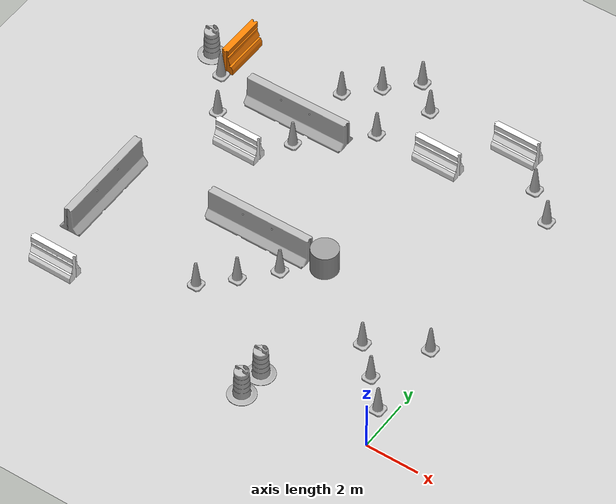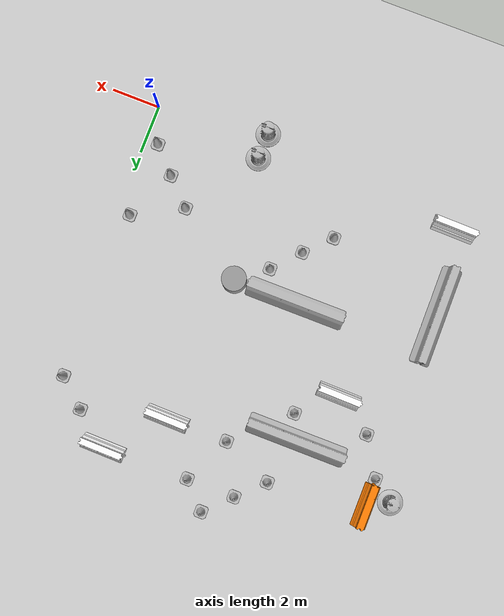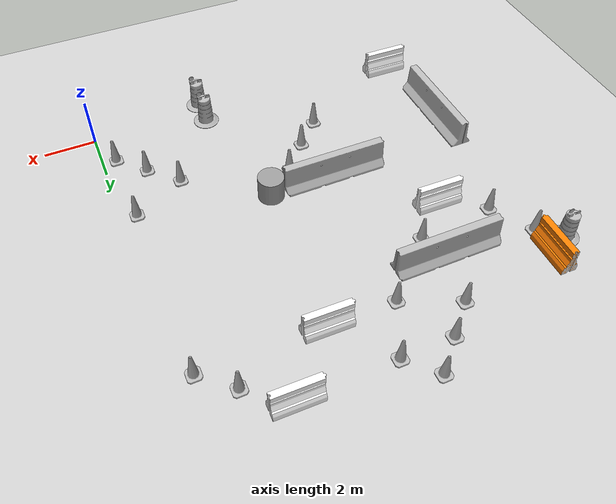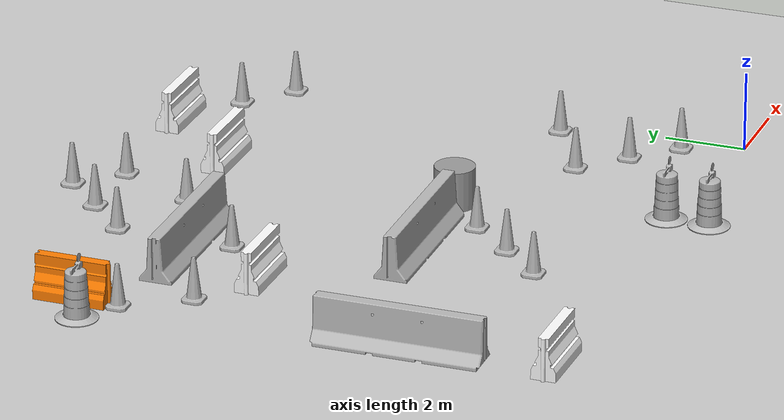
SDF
<sdf version="1.6">
 <world name="default">
  <model name="ground_plane">
   <static>1</static>
   <link name="link">
    <collision name="collision">
     <geometry><plane><normal>0 0 1</normal><size>100 100</size></plane></geometry>
     <surface>
      <contact><collide_bitmask>65535</collide_bitmask></contact>
      <friction><ode><mu>100</mu><mu2>50</mu2></ode></friction>
     </surface>
    </collision>
    <visual name="visual">
     <cast_shadows>0</cast_shadows>
     <geometry><plane><normal>0 0 1</normal><size>100 100</size></plane></geometry>
     <material>
      <script><uri>file://media/materials/scripts/gazebo.material</uri><name>Gazebo/Grey</name></script>
     </material>
    </visual>
   </link>
  </model>
  <model name="Construction Cone_0">
   <link name="link">
    <collision name="collision">
     <geometry>
      <mesh><scale>10 10 10</scale><uri>model://construction_cone/meshes/construction_cone.dae</uri></mesh>
     </geometry>
    </collision>
    <visual name="visual">
     <geometry>
      <mesh><scale>10 10 10</scale><uri>model://construction_cone/meshes/construction_cone.dae</uri></mesh>
     </geometry>
    </visual>
    <inertial>
     <inertia><ixx>1</ixx><ixy>0</ixy><ixz>0</ixz><iyy>1</iyy><iyz>0</iyz><izz>1</izz></inertia>
     <mass>1</mass>
    </inertial>
   </link>
   <pose>-7.48377 14.4957 -1e-05 -1e-06 0 0</pose>
  </model>
  <model name="Construction Cone_0_clone">
   <link name="link">
    <collision name="collision">
     <geometry>
      <mesh><scale>10 10 10</scale><uri>model://construction_cone/meshes/construction_cone.dae</uri></mesh>
     </geometry>
    </collision>
    <visual name="visual">
     <geometry>
      <mesh><scale>10 10 10</scale><uri>model://construction_cone/meshes/construction_cone.dae</uri></mesh>
     </geometry>
    </visual>
    <inertial>
     <inertia><ixx>1</ixx><ixy>0</ixy><ixz>0</ixz><iyy>1</iyy><iyz>0</iyz><izz>1</izz></inertia>
     <mass>1</mass>
    </inertial>
   </link>
   <pose>-8.4848 13.4919 -0 0 -0 0</pose>
  </model>
  <model name="Construction Cone_0_clone_1">
   <link name="link">
    <collision name="collision">
     <geometry>
      <mesh><scale>10 10 10</scale><uri>model://construction_cone/meshes/construction_cone.dae</uri></mesh>
     </geometry>
    </collision>
    <visual name="visual">
     <geometry>
      <mesh><scale>10 10 10</scale><uri>model://construction_cone/meshes/construction_cone.dae</uri></mesh>
     </geometry>
    </visual>
    <inertial>
     <inertia><ixx>1</ixx><ixy>0</ixy><ixz>0</ixz><iyy>1</iyy><iyz>0</iyz><izz>1</izz></inertia>
     <mass>1</mass>
    </inertial>
   </link>
   <pose>-6.51148 13.5032 -0 0 -0 0</pose>
  </model>
  <model name="drc_practice_white_jersey_barrier_clone">
   <static>1</static>
   <link name="link">
    <visual name="visual">
     <geometry>
      <mesh><uri>model://drc_practice_white_jersey_barrier/meshes/jersey_barrier.dae</uri></mesh>
     </geometry>
    </visual>
    <collision name="collision">
     <geometry>
      <mesh><uri>model://drc_practice_white_jersey_barrier/meshes/jersey_barrier.dae</uri></mesh>
     </geometry>
    </collision>
   </link>
   <pose>-2.98815 13.5359 0 0 0 -1.58176</pose>
  </model>
  <model name="drc_practice_white_jersey_barrier_clone_clone">
   <static>1</static>
   <link name="link">
    <visual name="visual">
     <geometry>
      <mesh><uri>model://drc_practice_white_jersey_barrier/meshes/jersey_barrier.dae</uri></mesh>
     </geometry>
    </visual>
    <collision name="collision">
     <geometry>
      <mesh><uri>model://drc_practice_white_jersey_barrier/meshes/jersey_barrier.dae</uri></mesh>
     </geometry>
    </collision>
   </link>
   <pose>-4.91611 11.5688 0 0 0 -1.58176</pose>
  </model>
  <model name="Construction Cone_0_clone_1_clone">
   <link name="link">
    <collision name="collision">
     <geometry>
      <mesh><scale>10 10 10</scale><uri>model://construction_cone/meshes/construction_cone.dae</uri></mesh>
     </geometry>
    </collision>
    <visual name="visual">
     <geometry>
      <mesh><scale>10 10 10</scale><uri>model://construction_cone/meshes/construction_cone.dae</uri></mesh>
     </geometry>
    </visual>
    <inertial>
     <inertia><ixx>1</ixx><ixy>0</ixy><ixz>0</ixz><iyy>1</iyy><iyz>0</iyz><izz>1</izz></inertia>
     <mass>1</mass>
    </inertial>
   </link>
   <pose>-1.56789 12.4756 -0 -0 -0 -0</pose>
  </model>
  <model name="Construction Cone_0_clone_1_clone_0">
   <link name="link">
    <collision name="collision">
     <geometry>
      <mesh><scale>10 10 10</scale><uri>model://construction_cone/meshes/construction_cone.dae</uri></mesh>
     </geometry>
    </collision>
    <visual name="visual">
     <geometry>
      <mesh><scale>10 10 10</scale><uri>model://construction_cone/meshes/construction_cone.dae</uri></mesh>
     </geometry>
    </visual>
    <inertial>
     <inertia><ixx>1</ixx><ixy>0</ixy><ixz>0</ixz><iyy>1</iyy><iyz>0</iyz><izz>1</izz></inertia>
     <mass>1</mass>
    </inertial>
   </link>
   <pose>-0.453751 11.482 -0 0 -0 0</pose>
  </model>
  <model name="Construction Cone_0_clone_0_clone">
   <link name="link">
    <collision name="collision">
     <geometry>
      <mesh><scale>10 10 10</scale><uri>model://construction_cone/meshes/construction_cone.dae</uri></mesh>
     </geometry>
    </collision>
    <visual name="visual">
     <geometry>
      <mesh><scale>10 10 10</scale><uri>model://construction_cone/meshes/construction_cone.dae</uri></mesh>
     </geometry>
    </visual>
    <inertial>
     <inertia><ixx>1</ixx><ixy>0</ixy><ixz>0</ixz><iyy>1</iyy><iyz>0</iyz><izz>1</izz></inertia>
     <mass>1</mass>
    </inertial>
   </link>
   <pose>-12.5113 9.33697 -0 0 -1e-06 0</pose>
  </model>
  <model name="jersey_barrier_clone_clone">
   <static>1</static>
   <link name="link">
    <visual name="visual">
     <geometry><mesh><uri>model://jersey_barrier/meshes/jersey_barrier.dae</uri></mesh></geometry>
    </visual>
    <collision name="upright">
     <pose>0 0 0.5715 0 -0 0</pose>
     <geometry><box><size>4.06542 0.3063 1.143</size></box></geometry>
    </collision>
    <collision name="base">
     <pose>0 0 0.032258 0 -0 0</pose>
     <geometry><box><size>4.06542 0.8107 0.064516</size></box></geometry>
    </collision>
    <collision name="base2">
     <pose>0 0 0.1 0 -0 0</pose>
     <geometry><box><size>4.06542 0.65 0.1</size></box></geometry>
    </collision>
    <collision name="base3">
     <pose>0 0 0.2 0 -0 0</pose>
     <geometry><box><size>4.06542 0.5 0.1</size></box></geometry>
    </collision>
    <collision name="left-angle">
     <pose>0 -0.224 0.2401 0.9 -0 0</pose>
     <geometry><box><size>4.06542 0.5 0.064516</size></box></geometry>
    </collision>
    <collision name="right-angle">
     <pose>0 0.224 0.2401 -0.9 0 0</pose>
     <geometry><box><size>4.06542 0.5 0.064516</size></box></geometry>
    </collision>
   </link>
   <pose>-9.9787 10.5294 0 0 -0 0</pose>
  </model>
  <model name="Construction Cone_0_clone_0_clone_clone">
   <link name="link">
    <collision name="collision">
     <geometry>
      <mesh><scale>10 10 10</scale><uri>model://construction_cone/meshes/construction_cone.dae</uri></mesh>
     </geometry>
    </collision>
    <visual name="visual">
     <geometry>
      <mesh><scale>10 10 10</scale><uri>model://construction_cone/meshes/construction_cone.dae</uri></mesh>
     </geometry>
    </visual>
    <inertial>
     <inertia><ixx>1</ixx><ixy>0</ixy><ixz>0</ixz><iyy>1</iyy><iyz>0</iyz><izz>1</izz></inertia>
     <mass>1</mass>
    </inertial>
   </link>
   <pose>-9.53841 9.57947 -0 0 -1e-06 0</pose>
  </model>
  <model name="drc_practice_white_jersey_barrier_clone_clone_clone">
   <static>1</static>
   <link name="link">
    <visual name="visual">
     <geometry>
      <mesh><uri>model://drc_practice_white_jersey_barrier/meshes/jersey_barrier.dae</uri></mesh>
     </geometry>
    </visual>
    <collision name="collision">
     <geometry>
      <mesh><uri>model://drc_practice_white_jersey_barrier/meshes/jersey_barrier.dae</uri></mesh>
     </geometry>
    </collision>
   </link>
   <pose>-10.924 8.31727 0 0 0 -1.58176</pose>
  </model>
  <model name="Construction Cone_0_clone_0_clone_clone_clone">
   <link name="link">
    <collision name="collision">
     <geometry>
      <mesh><scale>10 10 10</scale><uri>model://construction_cone/meshes/construction_cone.dae</uri></mesh>
     </geometry>
    </collision>
    <visual name="visual">
     <geometry>
      <mesh><scale>10 10 10</scale><uri>model://construction_cone/meshes/construction_cone.dae</uri></mesh>
     </geometry>
    </visual>
    <inertial>
     <inertia><ixx>1</ixx><ixy>0</ixy><ixz>0</ixz><iyy>1</iyy><iyz>0</iyz><izz>1</izz></inertia>
     <mass>1</mass>
    </inertial>
   </link>
   <pose>-7.42849 11.576 -0 0 -0 0</pose>
  </model>
  <model name="jersey_barrier_clone_clone_clone">
   <static>1</static>
   <link name="link">
    <visual name="visual">
     <geometry><mesh><uri>model://jersey_barrier/meshes/jersey_barrier.dae</uri></mesh></geometry>
    </visual>
    <collision name="upright">
     <pose>0 0 0.5715 0 -0 0</pose>
     <geometry><box><size>4.06542 0.3063 1.143</size></box></geometry>
    </collision>
    <collision name="base">
     <pose>0 0 0.032258 0 -0 0</pose>
     <geometry><box><size>4.06542 0.8107 0.064516</size></box></geometry>
    </collision>
    <collision name="base2">
     <pose>0 0 0.1 0 -0 0</pose>
     <geometry><box><size>4.06542 0.65 0.1</size></box></geometry>
    </collision>
    <collision name="base3">
     <pose>0 0 0.2 0 -0 0</pose>
     <geometry><box><size>4.06542 0.5 0.1</size></box></geometry>
    </collision>
    <collision name="left-angle">
     <pose>0 -0.224 0.2401 0.9 -0 0</pose>
     <geometry><box><size>4.06542 0.5 0.064516</size></box></geometry>
    </collision>
    <collision name="right-angle">
     <pose>0 0.224 0.2401 -0.9 0 0</pose>
     <geometry><box><size>4.06542 0.5 0.064516</size></box></geometry>
    </collision>
   </link>
   <pose>-13.4245 3.97341 0 0 0 -1.56391</pose>
  </model>
  <model name="drc_practice_white_jersey_barrier_clone_clone_clone_clone">
   <static>1</static>
   <link name="link">
    <visual name="visual">
     <geometry>
      <mesh><uri>model://drc_practice_white_jersey_barrier/meshes/jersey_barrier.dae</uri></mesh>
     </geometry>
    </visual>
    <collision name="collision">
     <geometry>
      <mesh><uri>model://drc_practice_white_jersey_barrier/meshes/jersey_barrier.dae</uri></mesh>
     </geometry>
    </collision>
   </link>
   <pose>-12.8698 0.433734 0 0 0 -1.58176</pose>
  </model>
  <model name="jersey_barrier_clone_clone_clone_0">
   <static>1</static>
   <link name="link">
    <visual name="visual">
     <geometry><mesh><uri>model://jersey_barrier/meshes/jersey_barrier.dae</uri></mesh></geometry>
    </visual>
    <collision name="upright">
     <pose>0 0 0.5715 0 -0 0</pose>
     <geometry><box><size>4.06542 0.3063 1.143</size></box></geometry>
    </collision>
    <collision name="base">
     <pose>0 0 0.032258 0 -0 0</pose>
     <geometry><box><size>4.06542 0.8107 0.064516</size></box></geometry>
    </collision>
    <collision name="base2">
     <pose>0 0 0.1 0 -0 0</pose>
     <geometry><box><size>4.06542 0.65 0.1</size></box></geometry>
    </collision>
    <collision name="base3">
     <pose>0 0 0.2 0 -0 0</pose>
     <geometry><box><size>4.06542 0.5 0.1</size></box></geometry>
    </collision>
    <collision name="left-angle">
     <pose>0 -0.224 0.2401 0.9 -0 0</pose>
     <geometry><box><size>4.06542 0.5 0.064516</size></box></geometry>
    </collision>
    <collision name="right-angle">
     <pose>0 0.224 0.2401 -0.9 0 0</pose>
     <geometry><box><size>4.06542 0.5 0.064516</size></box></geometry>
    </collision>
   </link>
   <pose>-8.01638 5.47012 0 0 -0 0</pose>
  </model>
  <model name="unit_cylinder">
   <pose>-5.42848 5.52156 0.499997 1e-06 -0 0</pose>
   <link name="link">
    <inertial>
     <mass>1</mass>
     <inertia><ixx>0.145833</ixx><ixy>0</ixy><ixz>0</ixz><iyy>0.145833</iyy><iyz>0</iyz><izz>0.125</izz></inertia>
    </inertial>
    <collision name="collision">
     <geometry><cylinder><radius>0.5</radius><length>1</length></cylinder></geometry>
    </collision>
    <visual name="visual">
     <geometry><cylinder><radius>0.5</radius><length>1</length></cylinder></geometry>
     <material>
      <script><name>Gazebo/Grey</name><uri>file://media/materials/scripts/gazebo.material</uri></script>
     </material>
    </visual>
   </link>
  </model>
  <model name="Construction Cone_0_clone_0_clone_clone_0">
   <link name="link">
    <collision name="collision">
     <geometry>
      <mesh><scale>10 10 10</scale><uri>model://construction_cone/meshes/construction_cone.dae</uri></mesh>
     </geometry>
    </collision>
    <visual name="visual">
     <geometry>
      <mesh><scale>10 10 10</scale><uri>model://construction_cone/meshes/construction_cone.dae</uri></mesh>
     </geometry>
    </visual>
    <inertial>
     <inertia><ixx>1</ixx><ixy>0</ixy><ixz>0</ixz><iyy>1</iyy><iyz>0</iyz><izz>1</izz></inertia>
     <mass>1</mass>
    </inertial>
   </link>
   <pose>-6.57528 4.55392 -1e-05 -1e-06 -0 -0</pose>
  </model>
  <model name="Construction Cone_0_clone_0_clone_clone_1">
   <link name="link">
    <collision name="collision">
     <geometry>
      <mesh><scale>10 10 10</scale><uri>model://construction_cone/meshes/construction_cone.dae</uri></mesh>
     </geometry>
    </collision>
    <visual name="visual">
     <geometry>
      <mesh><scale>10 10 10</scale><uri>model://construction_cone/meshes/construction_cone.dae</uri></mesh>
     </geometry>
    </visual>
    <inertial>
     <inertia><ixx>1</ixx><ixy>0</ixy><ixz>0</ixz><iyy>1</iyy><iyz>0</iyz><izz>1</izz></inertia>
     <mass>1</mass>
    </inertial>
   </link>
   <pose>-7.55022 3.47181 -0 0 -1e-06 0</pose>
  </model>
  <model name="Construction Cone_0_clone_0_clone_clone_2">
   <link name="link">
    <collision name="collision">
     <geometry>
      <mesh><scale>10 10 10</scale><uri>model://construction_cone/meshes/construction_cone.dae</uri></mesh>
     </geometry>
    </collision>
    <visual name="visual">
     <geometry>
      <mesh><scale>10 10 10</scale><uri>model://construction_cone/meshes/construction_cone.dae</uri></mesh>
     </geometry>
    </visual>
    <inertial>
     <inertia><ixx>1</ixx><ixy>0</ixy><ixz>0</ixz><iyy>1</iyy><iyz>0</iyz><izz>1</izz></inertia>
     <mass>1</mass>
    </inertial>
   </link>
   <pose>-8.52384 2.47533 -0 0 -1e-06 0</pose>
  </model>
  <model name="Construction Cone_0_clone_1_clone_1_clone">
   <link name="link">
    <collision name="collision">
     <geometry>
      <mesh><scale>10 10 10</scale><uri>model://construction_cone/meshes/construction_cone.dae</uri></mesh>
     </geometry>
    </collision>
    <visual name="visual">
     <geometry>
      <mesh><scale>10 10 10</scale><uri>model://construction_cone/meshes/construction_cone.dae</uri></mesh>
     </geometry>
    </visual>
    <inertial>
     <inertia><ixx>1</ixx><ixy>0</ixy><ixz>0</ixz><iyy>1</iyy><iyz>0</iyz><izz>1</izz></inertia>
     <mass>1</mass>
    </inertial>
   </link>
   <pose>-2.52061 3.47667 -4e-06 4e-06 -1e-06 0</pose>
  </model>
  <model name="Construction Cone_0_clone_1_clone_1_clone_0">
   <link name="link">
    <collision name="collision">
     <geometry>
      <mesh><scale>10 10 10</scale><uri>model://construction_cone/meshes/construction_cone.dae</uri></mesh>
     </geometry>
    </collision>
    <visual name="visual">
     <geometry>
      <mesh><scale>10 10 10</scale><uri>model://construction_cone/meshes/construction_cone.dae</uri></mesh>
     </geometry>
    </visual>
    <inertial>
     <inertia><ixx>1</ixx><ixy>0</ixy><ixz>0</ixz><iyy>1</iyy><iyz>0</iyz><izz>1</izz></inertia>
     <mass>1</mass>
    </inertial>
   </link>
   <pose>-1.49053 2.45106 -0 0 -0 0</pose>
  </model>
  <model name="Construction Cone_0_clone_1_clone_1_clone_1">
   <link name="link">
    <collision name="collision">
     <geometry>
      <mesh><scale>10 10 10</scale><uri>model://construction_cone/meshes/construction_cone.dae</uri></mesh>
     </geometry>
    </collision>
    <visual name="visual">
     <geometry>
      <mesh><scale>10 10 10</scale><uri>model://construction_cone/meshes/construction_cone.dae</uri></mesh>
     </geometry>
    </visual>
    <inertial>
     <inertia><ixx>1</ixx><ixy>0</ixy><ixz>0</ixz><iyy>1</iyy><iyz>0</iyz><izz>1</izz></inertia>
     <mass>1</mass>
    </inertial>
   </link>
   <pose>-0.52873 1.44362 -1e-05 -1e-06 0 0</pose>
  </model>
  <model name="Construction Cone_0_clone_1_clone_1_clone_clone">
   <link name="link">
    <collision name="collision">
     <geometry>
      <mesh><scale>10 10 10</scale><uri>model://construction_cone/meshes/construction_cone.dae</uri></mesh>
     </geometry>
    </collision>
    <visual name="visual">
     <geometry>
      <mesh><scale>10 10 10</scale><uri>model://construction_cone/meshes/construction_cone.dae</uri></mesh>
     </geometry>
    </visual>
    <inertial>
     <inertia><ixx>1</ixx><ixy>0</ixy><ixz>0</ixz><iyy>1</iyy><iyz>0</iyz><izz>1</izz></inertia>
     <mass>1</mass>
    </inertial>
   </link>
   <pose>-0.534948 4.5351 -0 0 -1e-06 0</pose>
  </model>
  <model name="Construction Barrel_clone_clone_0">
   <link name="link">
    <inertial>
     <pose>0 0 0.4 0 -0 0</pose>
     <mass>500</mass>
     <inertia><ixx>51.2096</ixx><iyy>51.2096</iyy><izz>25</izz><ixy>0</ixy><ixz>0</ixz><iyz>0</iyz></inertia>
    </inertial>
    <collision name="collision">
     <geometry><mesh><uri>model://construction_barrel/meshes/construction_barrel.dae</uri></mesh></geometry>
    </collision>
    <visual name="visual">
     <geometry><mesh><uri>model://construction_barrel/meshes/construction_barrel.dae</uri></mesh></geometry>
    </visual>
   </link>
   <pose>-4.52804 0.534334 -1e-06 2e-06 -2e-06 -0.000529</pose>
  </model>
  <model name="Construction Barrel_clone_clone_0_clone">
   <link name="link">
    <inertial>
     <pose>0 0 0.4 0 -0 0</pose>
     <mass>500</mass>
     <inertia><ixx>51.2096</ixx><iyy>51.2096</iyy><izz>25</izz><ixy>0</ixy><ixz>0</ixz><iyz>0</iyz></inertia>
    </inertial>
    <collision name="collision">
     <geometry><mesh><uri>model://construction_barrel/meshes/construction_barrel.dae</uri></mesh></geometry>
    </collision>
    <visual name="visual">
     <geometry><mesh><uri>model://construction_barrel/meshes/construction_barrel.dae</uri></mesh></geometry>
    </visual>
   </link>
   <pose>-4.54616 -0.53028 0 0 0 -0.000533</pose>
  </model>
  <model name="Construction_Barrel_clone_0">
   <link name="link">
    <inertial>
     <pose>0 0 0.4 0 -0 0</pose>
     <mass>500</mass>
     <inertia><ixx>51.2096</ixx><iyy>51.2096</iyy><izz>25</izz><ixy>0</ixy><ixz>0</ixz><iyz>0</iyz></inertia>
    </inertial>
    <visual name="visual">
     <geometry><mesh><uri>model://construction_barrel/meshes/construction_barrel.dae</uri></mesh></geometry>
     <material><shader type="pixel"/></material>
    </visual>
    <collision name="collision">
     <geometry>
      <mesh>
       <uri>/home/aaron/.gazebo/models/construction_barrel/meshes/construction_barrel.dae</uri>
       <scale>1 1 1</scale>
      </mesh>
     </geometry>
     <surface>
      <friction>
       <ode><mu>1</mu><mu2>1</mu2><fdir1>0 0 0</fdir1><slip1>0</slip1><slip2>0</slip2></ode>
       <torsional>
        <coefficient>1</coefficient>
        <patch_radius>0</patch_radius>
        <surface_radius>0</surface_radius>
        <use_patch_radius>1</use_patch_radius>
        <ode><slip>0</slip></ode>
       </torsional>
      </friction>
      <bounce><restitution_coefficient>0</restitution_coefficient><threshold>1e+06</threshold></bounce>
      <contact>
       <collide_without_contact>0</collide_without_contact>
       <collide_without_contact_bitmask>1</collide_without_contact_bitmask>
       <collide_bitmask>1</collide_bitmask>
       <ode>
        <soft_cfm>0</soft_cfm>
        <soft_erp>0.2</soft_erp>
        <kp>1e+13</kp>
        <kd>1</kd>
        <max_vel>0.01</max_vel>
        <min_depth>0</min_depth>
       </ode>
       <bullet>
        <split_impulse>1</split_impulse>
        <split_impulse_penetration_threshold>-0.01</split_impulse_penetration_threshold>
        <soft_cfm>0</soft_cfm>
        <soft_erp>0.2</soft_erp>
        <kp>1e+13</kp>
        <kd>1</kd>
       </bullet>
      </contact>
     </surface>
    </collision>
   </link>
   <static>1</static>
   <pose>-14.3004 11.4997 -2e-06 -5e-06 -4e-06 -0.041604</pose>
  </model>
  <model name="drc_practice_organge_jersey_barrier_clone">
   <link name="link">
    <visual name="visual">
     <geometry>
      <mesh><uri>model://drc_practice_orange_jersey_barrier/meshes/jersey_barrier.dae</uri></mesh>
     </geometry>
     <material><shader type="pixel"/></material>
    </visual>
    <collision name="collision">
     <geometry>
      <mesh>
       <uri>/home/aaron/.gazebo/models/drc_practice_orange_jersey_barrier/meshes/jersey_barrier.dae</uri>
       <scale>1 1 1</scale>
      </mesh>
     </geometry>
     <surface>
      <friction>
       <ode><mu>1</mu><mu2>1</mu2><fdir1>0 0 0</fdir1><slip1>0</slip1><slip2>0</slip2></ode>
       <torsional>
        <coefficient>1</coefficient>
        <patch_radius>0</patch_radius>
        <surface_radius>0</surface_radius>
        <use_patch_radius>1</use_patch_radius>
        <ode><slip>0</slip></ode>
       </torsional>
      </friction>
      <bounce><restitution_coefficient>0</restitution_coefficient><threshold>1e+06</threshold></bounce>
      <contact>
       <collide_without_contact>0</collide_without_contact>
       <collide_without_contact_bitmask>1</collide_without_contact_bitmask>
       <collide_bitmask>1</collide_bitmask>
       <ode>
        <soft_cfm>0</soft_cfm>
        <soft_erp>0.2</soft_erp>
        <kp>1e+13</kp>
        <kd>1</kd>
        <max_vel>0.01</max_vel>
        <min_depth>0</min_depth>
       </ode>
       <bullet>
        <split_impulse>1</split_impulse>
        <split_impulse_penetration_threshold>-0.01</split_impulse_penetration_threshold>
        <soft_cfm>0</soft_cfm>
        <soft_erp>0.2</soft_erp>
        <kp>1e+13</kp>
        <kd>1</kd>
       </bullet>
      </contact>
     </surface>
    </collision>
   </link>
   <static>1</static>
   <pose>-13.4204 11.963 0 0 -0 0</pose>
  </model>
  <model name="Construction_Cone_0_clone_0">
   <link name="link">
    <inertial>
     <inertia><ixx>1</ixx><ixy>0</ixy><ixz>0</ixz><iyy>1</iyy><iyz>0</iyz><izz>1</izz></inertia>
     <mass>1</mass>
    </inertial>
    <visual name="visual">
     <geometry>
      <mesh><scale>10 10 10</scale><uri>model://construction_cone/meshes/construction_cone.dae</uri></mesh>
     </geometry>
     <material><shader type="pixel"/></material>
    </visual>
    <collision name="collision">
     <geometry>
      <mesh>
       <uri>/home/aaron/.gazebo/models/construction_cone/meshes/construction_cone.dae</uri>
       <scale>10 10 10</scale>
      </mesh>
     </geometry>
     <surface>
      <friction>
       <ode><mu>1</mu><mu2>1</mu2><fdir1>0 0 0</fdir1><slip1>0</slip1><slip2>0</slip2></ode>
       <torsional>
        <coefficient>1</coefficient>
        <patch_radius>0</patch_radius>
        <surface_radius>0</surface_radius>
        <use_patch_radius>1</use_patch_radius>
        <ode><slip>0</slip></ode>
       </torsional>
      </friction>
      <bounce><restitution_coefficient>0</restitution_coefficient><threshold>1e+06</threshold></bounce>
      <contact>
       <collide_without_contact>0</collide_without_contact>
       <collide_without_contact_bitmask>1</collide_without_contact_bitmask>
       <collide_bitmask>1</collide_bitmask>
       <ode>
        <soft_cfm>0</soft_cfm>
        <soft_erp>0.2</soft_erp>
        <kp>1e+13</kp>
        <kd>1</kd>
        <max_vel>0.01</max_vel>
        <min_depth>0</min_depth>
       </ode>
       <bullet>
        <split_impulse>1</split_impulse>
        <split_impulse_penetration_threshold>-0.01</split_impulse_penetration_threshold>
        <soft_cfm>0</soft_cfm>
        <soft_erp>0.2</soft_erp>
        <kp>1e+13</kp>
        <kd>1</kd>
       </bullet>
      </contact>
     </surface>
    </collision>
   </link>
   <static>1</static>
   <pose>-9.5067 12.4947 0 0 -0 0</pose>
  </model>
  <model name="Construction Cone_0_clone_0_clone_clone_3">
   <link name="link">
    <collision name="collision">
     <geometry>
      <mesh><scale>10 10 10</scale><uri>model://construction_cone/meshes/construction_cone.dae</uri></mesh>
     </geometry>
    </collision>
    <visual name="visual">
     <geometry>
      <mesh><scale>10 10 10</scale><uri>model://construction_cone/meshes/construction_cone.dae</uri></mesh>
     </geometry>
    </visual>
    <inertial>
     <inertia><ixx>1</ixx><ixy>0</ixy><ixz>0</ixz><iyy>1</iyy><iyz>0</iyz><izz>1</izz></inertia>
     <mass>1</mass>
    </inertial>
   </link>
   <pose>-13.4402 10.8421 -0 0 -1e-06 0</pose>
  </model>
 </world>
</sdf>
